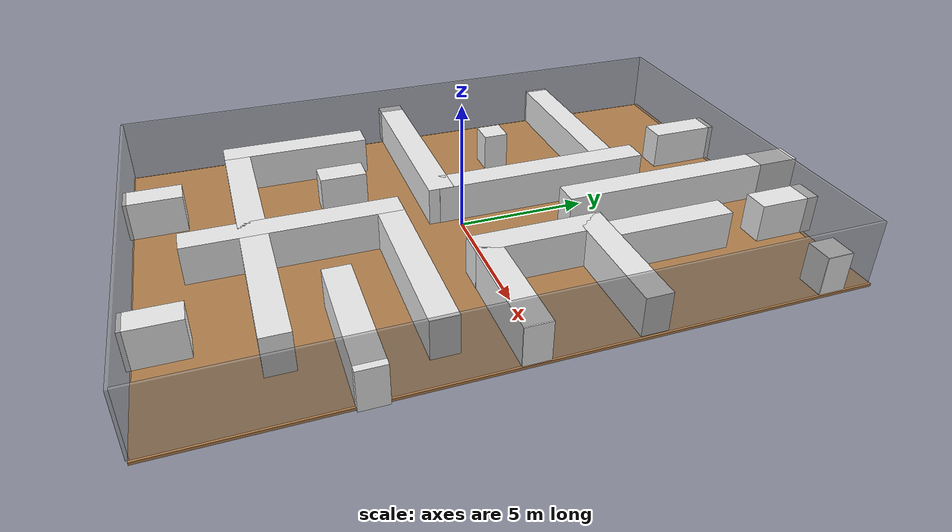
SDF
<sdf version="1.6">
 <world name="default">
  <light name="sun" type="directional">
   <pose>0 0 10 0 -0 0</pose>
   <diffuse>0.8 0.8 0.8 1</diffuse>
   <specular>0.2 0.2 0.2 1</specular>
   <attenuation>
    <range>1000</range>
    <constant>0.9</constant>
    <linear>0.01</linear>
    <quadratic>0.001</quadratic>
   </attenuation>
   <direction>-0.5 0.1 -0.9</direction>
  </light>
  <physics name="default_physics" default="0" type="ode">
   <real_time_update_rate>1000</real_time_update_rate>
   <max_step_size>0.001</max_step_size>
   <real_time_factor>1</real_time_factor>
   <ode>
    <solver>
     <type>quick</type>
     <iters>150</iters>
     <precon_iters>0</precon_iters>
     <sor>1.4</sor>
     <use_dynamic_moi_rescaling>1</use_dynamic_moi_rescaling>
    </solver>
    <constraints>
     <cfm>1e-05</cfm>
     <erp>0.2</erp>
     <contact_max_correcting_vel>2000</contact_max_correcting_vel>
     <contact_surface_layer>0.01</contact_surface_layer>
    </constraints>
   </ode>
  </physics>
  <model name="box_1">
   <pose>0.05 -12.05 1.25 0 -0 0</pose>
   <static>1</static>
   <link name="link">
    <collision name="collision"><geometry><box><size>16.1 0.1 2.5</size></box></geometry></collision>
    <visual name="visual">
     <geometry><box><size>16.1 0.1 2.5</size></box></geometry>
     <material>
      <script><name>Gazebo/GreyTransparent</name><uri>file://media/materials/scripts/gazebo.material</uri></script>
     </material>
    </visual>
   </link>
  </model>
  <model name="box_2">
   <pose>8.05 0.05 1.25 0 -0 0</pose>
   <static>1</static>
   <link name="link">
    <collision name="collision"><geometry><box><size>0.1 24.1 2.5</size></box></geometry></collision>
    <visual name="visual">
     <geometry><box><size>0.1 24.1 2.5</size></box></geometry>
     <material>
      <script><name>Gazebo/GreyTransparent</name><uri>file://media/materials/scripts/gazebo.material</uri></script>
     </material>
    </visual>
   </link>
  </model>
  <model name="box_3">
   <pose>-0.05 12.05 1.25 0 -0 0</pose>
   <static>1</static>
   <link name="link">
    <collision name="collision"><geometry><box><size>16.1 0.1 2.5</size></box></geometry></collision>
    <visual name="visual">
     <geometry><box><size>16.1 0.1 2.5</size></box></geometry>
     <material>
      <script><name>Gazebo/GreyTransparent</name><uri>file://media/materials/scripts/gazebo.material</uri></script>
     </material>
    </visual>
   </link>
  </model>
  <model name="box_4">
   <pose>-8.05 -0.05 1.25 0 -0 0</pose>
   <static>1</static>
   <link name="link">
    <collision name="collision"><geometry><box><size>0.1 24.1 2.5</size></box></geometry></collision>
    <visual name="visual">
     <geometry><box><size>0.1 24.1 2.5</size></box></geometry>
     <material>
      <script><name>Gazebo/GreyTransparent</name><uri>file://media/materials/scripts/gazebo.material</uri></script>
     </material>
    </visual>
   </link>
  </model>
  <model name="box_5">
   <pose>0.075723 0.05653 -0.05 0 -0 0</pose>
   <static>1</static>
   <link name="link">
    <collision name="collision"><geometry><box><size>16.2 24.2 0.1</size></box></geometry></collision>
    <visual name="visual">
     <geometry><box><size>16.2 24.2 0.1</size></box></geometry>
     <material>
      <script><name>Gazebo/WoodFloor</name><uri>file://media/materials/scripts/gazebo.material</uri></script>
     </material>
    </visual>
   </link>
  </model>
  <gravity>0 0 -9.8066</gravity>
  <magnetic_field>6e-06 2.3e-05 -4.2e-05</magnetic_field>
  <atmosphere type="adiabatic"/>
  <scene><ambient>0.4 0.4 0.4 1</ambient><background>0.7 0.7 0.7 1</background><shadows>1</shadows></scene>
  <spherical_coordinates>
   <surface_model>EARTH_WGS84</surface_model>
   <latitude_deg>0</latitude_deg>
   <longitude_deg>0</longitude_deg>
   <elevation>0</elevation>
   <heading_deg>0</heading_deg>
  </spherical_coordinates>
  <model name="box_9_clone_clone_8">
   <pose>-4.77336 6.49358 0.75 0 -0 0</pose>
   <static>1</static>
   <link name="link">
    <collision name="collision"><geometry><box><size>6.71037 1 1.5</size></box></geometry></collision>
    <visual name="visual">
     <geometry><box><size>6.71037 1 1.5</size></box></geometry>
     <material>
      <script><name>Gazebo/White</name><uri>file://media/materials/scripts/gazebo.material</uri></script>
     </material>
    </visual>
   </link>
  </model>
  <model name="box_9_clone_clone_5_clone_2_clone_0">
   <pose>4.15275 6.39658 0.75 0 -0 0</pose>
   <static>1</static>
   <link name="link">
    <collision name="collision"><geometry><box><size>0.949146 4.71797 1.5</size></box></geometry></collision>
    <visual name="visual">
     <geometry><box><size>0.949146 4.71797 1.5</size></box></geometry>
     <material>
      <script><name>Gazebo/White</name><uri>file://media/materials/scripts/gazebo.material</uri></script>
     </material>
    </visual>
   </link>
  </model>
  <model name="box_9_clone_clone_5_clone_2_clone_0_clone">
   <pose>-3.48024 -11.0669 0.75 0 -0 0</pose>
   <static>1</static>
   <link name="link">
    <collision name="collision"><geometry><box><size>1 2.12665 1.5</size></box></geometry></collision>
    <visual name="visual">
     <geometry><box><size>1 2.12665 1.5</size></box></geometry>
     <material>
      <script><name>Gazebo/White</name><uri>file://media/materials/scripts/gazebo.material</uri></script>
     </material>
    </visual>
   </link>
  </model>
  <model name="box_9_clone_clone_5_clone_2_clone_0_clone_1_clone">
   <pose>4.15601 11.2609 0.75 0 -0 0</pose>
   <static>1</static>
   <link name="link">
    <collision name="collision"><geometry><box><size>1 2.39384 1.5</size></box></geometry></collision>
    <visual name="visual">
     <geometry><box><size>1 2.39384 1.5</size></box></geometry>
     <material>
      <script><name>Gazebo/White</name><uri>file://media/materials/scripts/gazebo.material</uri></script>
     </material>
    </visual>
   </link>
  </model>
  <model name="box_9_clone_clone_7_clone_clone_clone">
   <pose>-4.45584 -0.673379 0.75 0 -0 0</pose>
   <static>1</static>
   <link name="link">
    <collision name="collision"><geometry><box><size>8.02712 1 1.5</size></box></geometry></collision>
    <visual name="visual">
     <geometry><box><size>8.02712 1 1.5</size></box></geometry>
     <material>
      <script><name>Gazebo/White</name><uri>file://media/materials/scripts/gazebo.material</uri></script>
     </material>
    </visual>
   </link>
  </model>
  <model name="box_9_clone_clone_5_clone_2_clone_clone_clone">
   <pose>7.62904 10.5269 0.75 0 -0 0</pose>
   <static>1</static>
   <link name="link">
    <collision name="collision"><geometry><box><size>1 1 1.5</size></box></geometry></collision>
    <visual name="visual">
     <geometry><box><size>1 1 1.5</size></box></geometry>
     <material>
      <script><name>Gazebo/White</name><uri>file://media/materials/scripts/gazebo.material</uri></script>
     </material>
    </visual>
   </link>
  </model>
  <model name="box_9_clone_clone_7_clone_0">
   <pose>1.37825 8.66257 0.75 0 -0 0</pose>
   <static>1</static>
   <link name="link">
    <collision name="collision"><geometry><box><size>1 10.045 1.5</size></box></geometry></collision>
    <visual name="visual">
     <geometry><box><size>1 10.045 1.5</size></box></geometry>
     <material>
      <script><name>Gazebo/White</name><uri>file://media/materials/scripts/gazebo.material</uri></script>
     </material>
    </visual>
   </link>
  </model>
  <model name="box_9_clone_clone_9_clone">
   <pose>-2.30467 10.8481 0.75 0 -0 0</pose>
   <static>1</static>
   <link name="link">
    <collision name="collision"><geometry><box><size>1 2.7123 1.5</size></box></geometry></collision>
    <visual name="visual">
     <geometry><box><size>1 2.7123 1.5</size></box></geometry>
     <material>
      <script><name>Gazebo/White</name><uri>file://media/materials/scripts/gazebo.material</uri></script>
     </material>
    </visual>
   </link>
  </model>
  <model name="box_9_clone_clone_5_clone_2_clone_0_clone_clone">
   <pose>3.4817 -2.90303 0.75 0 -0 0</pose>
   <static>1</static>
   <link name="link">
    <collision name="collision"><geometry><box><size>6.95435 1 1.5</size></box></geometry></collision>
    <visual name="visual">
     <geometry><box><size>6.95435 1 1.5</size></box></geometry>
     <material>
      <script><name>Gazebo/White</name><uri>file://media/materials/scripts/gazebo.material</uri></script>
     </material>
    </visual>
   </link>
  </model>
  <model name="box_9_clone_clone_7_clone_clone_0">
   <pose>-4.52734 2.91167 0.75 0 -0 0</pose>
   <static>1</static>
   <link name="link">
    <collision name="collision"><geometry><box><size>1 1 1.5</size></box></geometry></collision>
    <visual name="visual">
     <geometry><box><size>1 1 1.5</size></box></geometry>
     <material>
      <script><name>Gazebo/White</name><uri>file://media/materials/scripts/gazebo.material</uri></script>
     </material>
    </visual>
   </link>
  </model>
  <model name="box_9_clone_clone_5_clone_2_clone_0_clone_0_clone">
   <pose>0.121703 -7.77854 0.75 0 -0 0</pose>
   <static>1</static>
   <link name="link">
    <collision name="collision"><geometry><box><size>11.988 1 1.5</size></box></geometry></collision>
    <visual name="visual">
     <geometry><box><size>11.988 1 1.5</size></box></geometry>
     <material>
      <script><name>Gazebo/White</name><uri>file://media/materials/scripts/gazebo.material</uri></script>
     </material>
    </visual>
   </link>
  </model>
  <model name="box_9_clone_clone_5_clone_2_clone_clone_clone_0_clone">
   <pose>5.63709 -0.366569 0.75 0 -0 0</pose>
   <static>1</static>
   <link name="link">
    <collision name="collision"><geometry><box><size>5.01126 1 1.5</size></box></geometry></collision>
    <visual name="visual">
     <geometry><box><size>5.01126 1 1.5</size></box></geometry>
     <material>
      <script><name>Gazebo/White</name><uri>file://media/materials/scripts/gazebo.material</uri></script>
     </material>
    </visual>
   </link>
  </model>
  <model name="box_9_clone_clone_5_clone_2_clone_clone_clone_0_clone_clone">
   <pose>3.50175 1.6801 0.75 0 -0 0</pose>
   <static>1</static>
   <link name="link">
    <collision name="collision"><geometry><box><size>1 5.11256 1.5</size></box></geometry></collision>
    <visual name="visual">
     <geometry><box><size>1 5.11256 1.5</size></box></geometry>
     <material>
      <script><name>Gazebo/White</name><uri>file://media/materials/scripts/gazebo.material</uri></script>
     </material>
    </visual>
   </link>
  </model>
  <audio><device>default</device></audio>
  <model name="box_9_clone_clone_5_clone_2_clone_0_clone_0_clone_clone">
   <pose>4.04913 -11.1735 0.75 0 -0 0</pose>
   <static>1</static>
   <link name="link">
    <collision name="collision"><geometry><box><size>0.952546 1.94342 1.5</size></box></geometry></collision>
    <visual name="visual">
     <geometry><box><size>0.952546 1.94342 1.5</size></box></geometry>
     <material>
      <script><name>Gazebo/White</name><uri>file://media/materials/scripts/gazebo.material</uri></script>
     </material>
    </visual>
   </link>
  </model>
  <model name="box_9_clone_clone_7_clone_0_clone">
   <pose>-0.928543 3.5801 0.75 0 -0 0</pose>
   <static>1</static>
   <link name="link">
    <collision name="collision"><geometry><box><size>1 8.64934 1.5</size></box></geometry></collision>
    <visual name="visual">
     <geometry><box><size>1 8.64934 1.5</size></box></geometry>
     <material>
      <script><name>Gazebo/White</name><uri>file://media/materials/scripts/gazebo.material</uri></script>
     </material>
    </visual>
   </link>
  </model>
  <model name="box_9_clone_clone_5_clone_2_clone_0_clone_clone_0">
   <pose>0.0848 -6.35803 0.75 0 -0 0</pose>
   <static>1</static>
   <link name="link">
    <collision name="collision"><geometry><box><size>1 7.89996 1.5</size></box></geometry></collision>
    <visual name="visual">
     <geometry><box><size>1 7.89996 1.5</size></box></geometry>
     <material>
      <script><name>Gazebo/White</name><uri>file://media/materials/scripts/gazebo.material</uri></script>
     </material>
    </visual>
   </link>
  </model>
  <model name="box_9_clone_clone_5_clone_2_clone_0_clone_clone_0_clone">
   <pose>-5.96216 -5.37918 0.75 0 -0 0</pose>
   <static>1</static>
   <link name="link">
    <collision name="collision"><geometry><box><size>1 5.79638 1.5</size></box></geometry></collision>
    <visual name="visual">
     <geometry><box><size>1 5.79638 1.5</size></box></geometry>
     <material>
      <script><name>Gazebo/White</name><uri>file://media/materials/scripts/gazebo.material</uri></script>
     </material>
    </visual>
   </link>
  </model>
  <model name="box_9_clone_clone_5_clone_2_clone_clone_clone_0_clone_clone_0">
   <pose>5.56863 3.72399 0.75 0 -0 0</pose>
   <static>1</static>
   <link name="link">
    <collision name="collision"><geometry><box><size>5.01126 1 1.5</size></box></geometry></collision>
    <visual name="visual">
     <geometry><box><size>5.01126 1 1.5</size></box></geometry>
     <material>
      <script><name>Gazebo/White</name><uri>file://media/materials/scripts/gazebo.material</uri></script>
     </material>
    </visual>
   </link>
  </model>
  <model name="box_9_clone_clone_5_clone_2_clone_0_clone_clone_0_clone_0">
   <pose>-3.01959 -4.01478 0.75 0 -0 0</pose>
   <static>1</static>
   <link name="link">
    <collision name="collision"><geometry><box><size>1 1.80357 1.5</size></box></geometry></collision>
    <visual name="visual">
     <geometry><box><size>1 1.80357 1.5</size></box></geometry>
     <material>
      <script><name>Gazebo/White</name><uri>file://media/materials/scripts/gazebo.material</uri></script>
     </material>
    </visual>
   </link>
  </model>
  <model name="box_9_clone_clone_5_clone_2_clone_0_clone_0_clone_clone_clone">
   <pose>5.83428 -5.45648 0.75 0 -0 0</pose>
   <static>1</static>
   <link name="link">
    <collision name="collision"><geometry><box><size>5.05064 1 1.5</size></box></geometry></collision>
    <visual name="visual">
     <geometry><box><size>5.05064 1 1.5</size></box></geometry>
     <material>
      <script><name>Gazebo/White</name><uri>file://media/materials/scripts/gazebo.material</uri></script>
     </material>
    </visual>
   </link>
  </model>
 </world>
</sdf>
